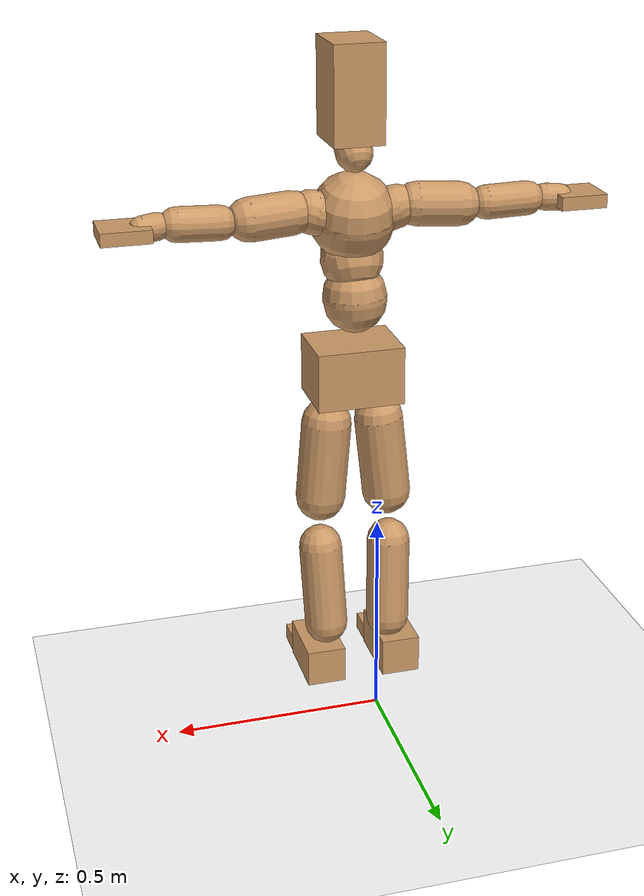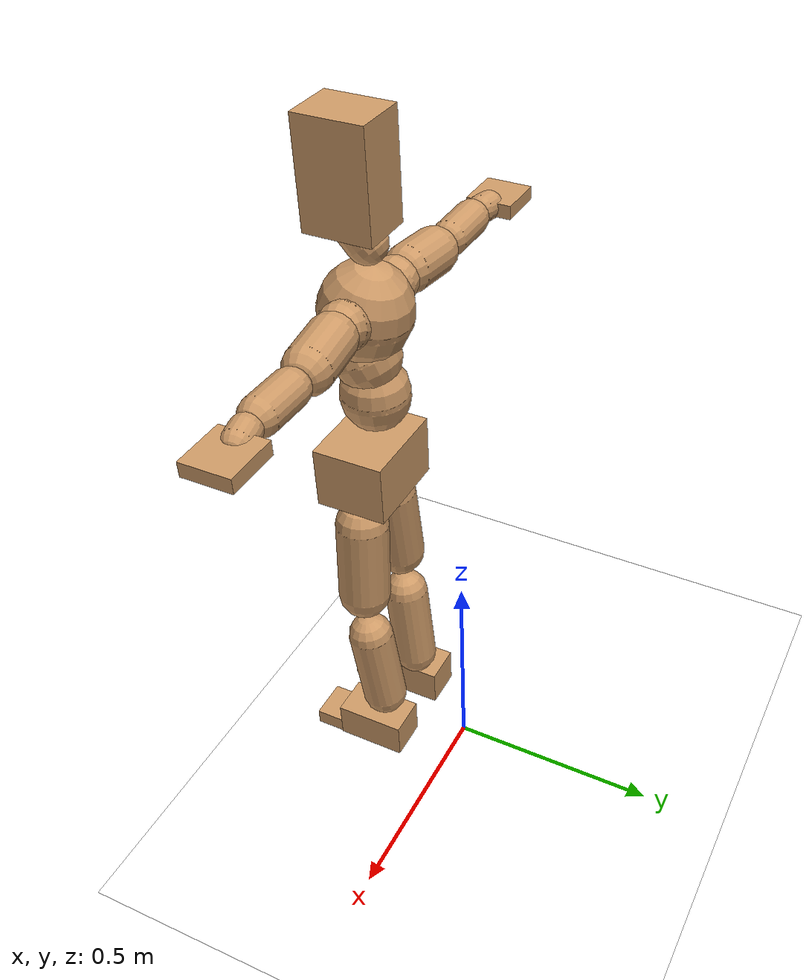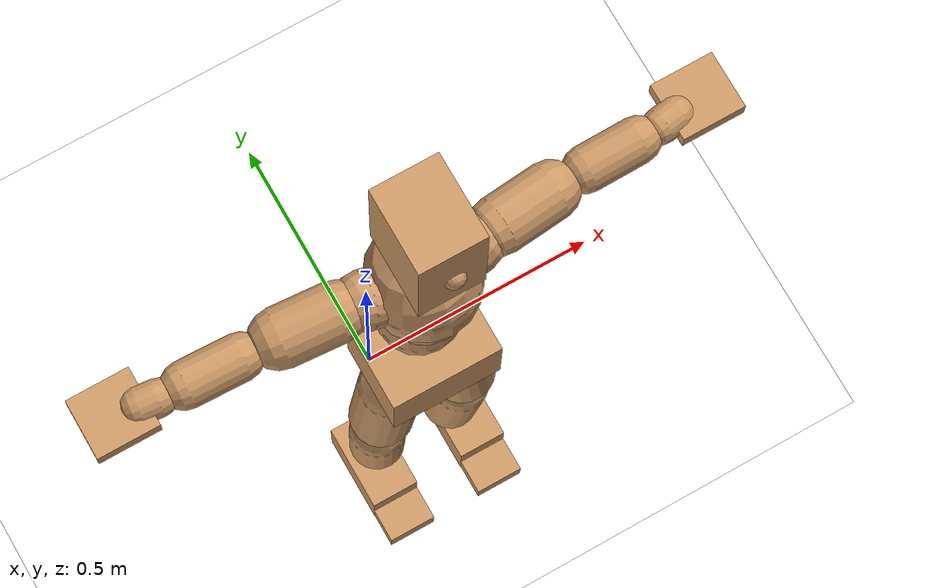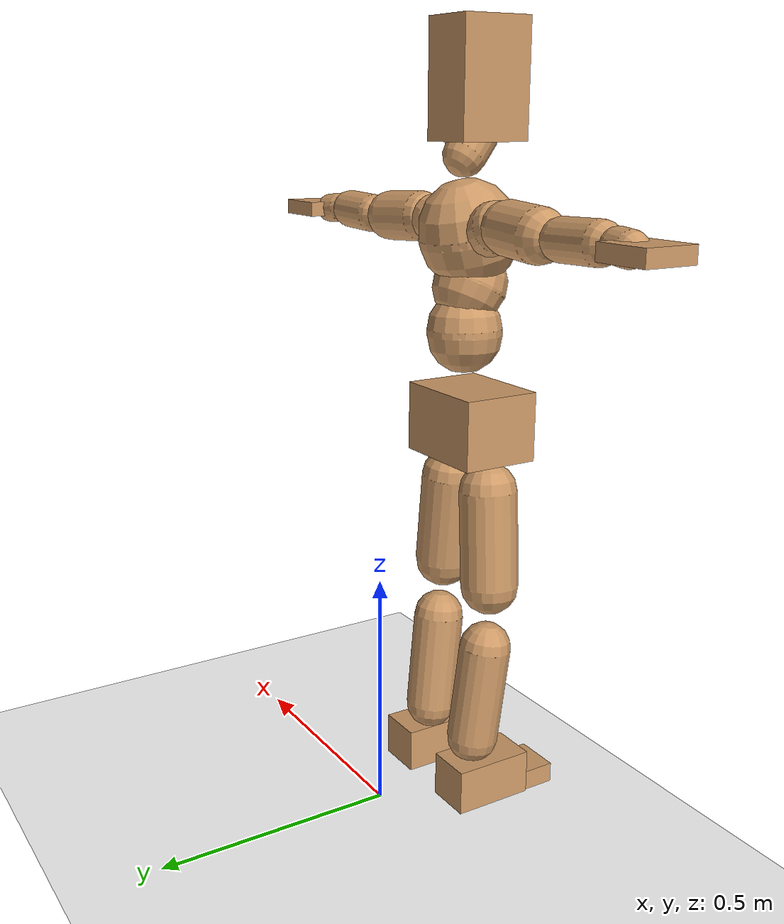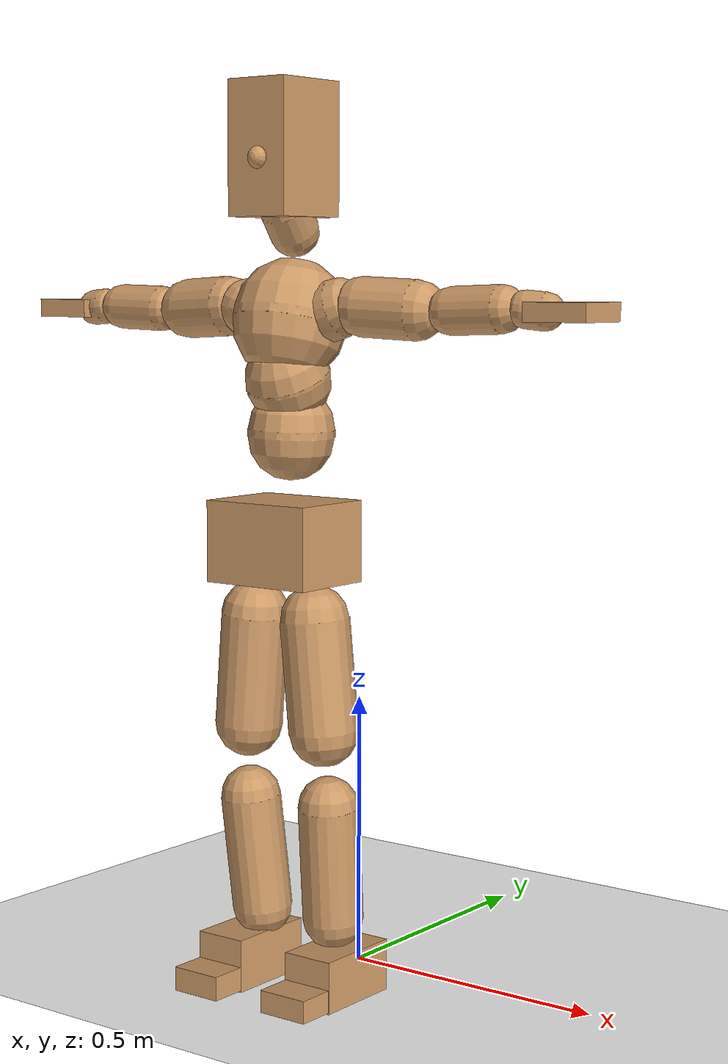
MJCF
<mujoco model="humanoid">
  <option integrator="implicitfast" />

  <visual>
    <global offwidth="1280" offheight="960" />
    <headlight active="1" ambient="0.34 0.34 0.34" diffuse="0.5 0.5 0.5" />
  </visual>

  <default>
    <joint damping="2" stiffness="2" armature="0.01" limited="true" solimplimit="0 .99 .01" />
    <geom condim="1" friction="0.7 0.005 0.0001" solimp=".99 .99 .003" solref="0.015 1" margin="0.001" rgba="0.8 0.6 .4 1" />
    <default class="smplcontact">
      <geom condim="3" friction="1. 0.005 0.0001" solref="0.015 1" solimp="0.98 0.98 0.001" priority="1" />
    </default>
    <default class="stiff_medium">
      <joint stiffness="10" />
    </default>
    <default class="stiff_medium_higher">
      <joint stiffness="50" />
    </default>
    <default class="stiff_high">
      <joint stiffness="100" />
    </default>
  </default>

  <asset>
    <texture type="skybox" builtin="gradient" rgb1="0.99 0.99 0.99" rgb2="0.608 0.828 0.892" width="100" />
    <texture builtin="flat" height="1278" mark="cross" markrgb="1 1 1" name="texgeom" random="0.01" rgb1="0.8 0.6 0.4" rgb2="0.8 0.6 0.4" type="cube" width="127" />
    <texture name="texplane" type="2d" builtin="checker" markrgb="1 1 1" rgb1="0.756 0.772 0.76" rgb2="0.6 0.6 0.6" width="100" height="100" />
    <material name="MatPlane" reflectance="0.5" texture="texplane" texrepeat="1 1" texuniform="true" />
    <material name="geom" texture="texgeom" texuniform="true" />
  </asset>

  <worldbody>
    <light name="tracking_light" pos="0 0 7" dir="0 0 -1" directional="true" cutoff="100" exponent="1" diffuse="1 1 1" specular="0.1 0.1 0.1" mode="trackcom" />
    <camera name="back" pos="0 3 2.4" xyaxes="-1 0 0 0 -1 2" mode="trackcom" />
    <camera name="side" pos="-3 0 2.4" xyaxes="0 -1 0 1 0 2" mode="trackcom" />
    <camera name="front_side" pos="-2.8 -2.8 0.8" xyaxes="0.5 -0.5 0 0.1 0.1 1" mode="trackcom" />
    <geom condim="3" name="floor" pos="0 0 0" rgba="1 1 1 1" size="100 100 .2" type="plane" material="MatPlane" />
    <body name="Pelvis" pos="-0.0018 -0.2233 0.825587" euler="90 0 0">
      <site name="Pelvis" size="0.01" />
      <freejoint name="Pelvis" />
      <geom type="box" pos="-0.0000 -0.0121 -0.0055" size="0.1069 0.0722 0.083" quat="1.0000 0.0000 0.0000 0.0000" density="3165.830099" name="Pelvis" />
      <body name="L_Hip" pos="0.0608125 -0.079975 -0.00595">
        <joint name="L_Hip_x" type="hinge" pos="0 0 0" axis="1 0 0" stiffness="8.018564387755102" range="-160.0 22.92" class="stiff_medium" damping="11.360360262787497" armature="0.007153277434128083"/>
        <joint name="L_Hip_y" type="hinge" pos="0 0 0" axis="0 1 0" stiffness="8.040343265306122" range="-70.0 70.0" class="stiff_medium" damping="8.207855033549663" armature="0.008378856726485993"/>
        <joint name="L_Hip_z" type="hinge" pos="0 0 0" axis="0 0 1" stiffness="8.038478673469386" range="-28.65 90.0" class="stiff_medium" damping="7.581991637464593" armature="0.0071514274685227155"/>
        <geom type="capsule" density="2040.816327" fromto="0.0060375 -0.065625 -0.0007875 0.023975 -0.262675 -0.00315" size="0.0615" name="L_Hip" />
        <body name="L_Knee" pos="0.0300125 -0.3283 -0.0039375">
          <joint name="L_Knee_x" type="hinge" pos="0 0 0" axis="1 0 0" range="-5.16 171.89" damping="6.187481263356625" armature="0.007345812746914759" stiffness="1.6286882448979592"/>
          <joint name="L_Knee_y" type="hinge" pos="0 0 0" axis="0 1 0" range="-4.58 6.88" damping="6.664577128501179" armature="0.008600571968275744" stiffness="1.6138675306122447"/>
          <joint name="L_Knee_z" type="hinge" pos="0 0 0" axis="0 0 1" range="-6.88 4.58" damping="6.195974658750661" armature="0.007336542514311983" stiffness="1.635226244897959"/>
          <geom type="capsule" density="1234.567901" fromto="-0.0023625 -0.06965 -0.0076125 -0.0095375 -0.2786 -0.030625" size="0.0541" name="L_Knee" />
          <body name="L_Ankle" pos="-0.0119 -0.34825 -0.0382375">
            <joint name="L_Ankle_x" type="hinge" pos="0 0 0" axis="1 0 0" range="-45.84 45.84" class="stiff_medium" damping="5.161808139893089" armature="0.008458478225834358" stiffness="8.750018673469388"/>
            <joint name="L_Ankle_y" type="hinge" pos="0 0 0" axis="0 1 0" range="-74.48 22.92" class="stiff_medium" damping="2.5896377165389355" armature="0.008515827848834853" stiffness="8.750011836734695"/>
            <joint name="L_Ankle_z" type="hinge" pos="0 0 0" axis="0 0 1" range="-4.58 4.58" class="stiff_medium" damping="5.292201995620508" armature="0.008891238718237998" stiffness="8.75"/>
            <geom type="box" pos="0.0203875 -0.0209125 0.021175" size="0.0483 0.0464 0.085" quat="1.0000 0.0000 0.0000 0.0000" density="449.071558" name="L_Ankle" class="smplcontact" />
            <body name="L_Toe" pos="0.0231 -0.048825 0.104388">
              <joint name="L_Toe_x" type="hinge" pos="0 0 0" axis="1 0 0" range="-91.67 22.92" armature="0.009108934582590985" damping="1.7855327227208255" stiffness="1.75"/>
              <joint name="L_Toe_y" type="hinge" pos="0 0 0" axis="0 1 0" range="-4.58 4.58" armature="0.009372172477213336" damping="1.811148908020726" stiffness="1.75"/>
              <joint name="L_Toe_z" type="hinge" pos="0 0 0" axis="0 0 1" range="-4.58 4.58" armature="0.009904425331423569" damping="1.8618670376797182" stiffness="1.75"/>
              <geom type="box" pos="-0.002625 0.0048125 0.0217" size="0.0478 0.02 0.0496" quat="1.0000 0.0000 0.0000 0.0000" density="423.206892" name="L_Toe" class="smplcontact" />
            </body>
          </body>
        </body>
      </body>
      <body name="R_Hip" pos="-0.0592375 -0.0791875 -0.0037625">
        <joint name="R_Hip_x" type="hinge" pos="0 0 0" axis="1 0 0" stiffness="8.018564387755102" range="-160.0 22.92" class="stiff_medium" damping="11.360360262787497" armature="0.007153277434128083"/>
        <joint name="R_Hip_y" type="hinge" pos="0 0 0" axis="0 1 0" stiffness="8.040343265306122" range="-70.0 70.0" class="stiff_medium" damping="8.207855033549663" armature="0.008378856726485993"/>
        <joint name="R_Hip_z" type="hinge" pos="0 0 0" axis="0 0 1" stiffness="8.038478673469386" range="-90.0 28.65" class="stiff_medium" damping="7.581991637464593" armature="0.0071514274685227155"/>
        <geom type="capsule" density="2040.816327" fromto="-0.0067375 -0.0669375 -0.001575 -0.026775 -0.267838 -0.0062125" size="0.0606" name="R_Hip" />
        <body name="R_Knee" pos="-0.0335125 -0.334775 -0.0077875">
          <joint name="R_Knee_x" type="hinge" pos="0 0 0" axis="1 0 0" range="-5.16 171.89" damping="6.187481263356625" armature="0.007345812746914759" stiffness="1.6286882448979592"/>
          <joint name="R_Knee_y" type="hinge" pos="0 0 0" axis="0 1 0" range="-6.88 4.58" damping="6.664577128501179" armature="0.008600571968275744" stiffness="1.6138675306122447"/>
          <joint name="R_Knee_z" type="hinge" pos="0 0 0" axis="0 0 1" range="-4.58 6.88" damping="6.195974658750661" armature="0.007336542514311983" stiffness="1.635226244897959"/>
          <geom type="capsule" density="1234.567901" fromto="0.0028 -0.0697375 -0.0074375 0.011025 -0.278863 -0.029575" size="0.0541" name="R_Knee" />
          <body name="R_Ankle" pos="0.013825 -0.3486 -0.0370125">
            <joint name="R_Ankle_x" type="hinge" pos="0 0 0" axis="1 0 0" range="-45.84 45.84" class="stiff_medium" damping="5.161808139893089" armature="0.008458478225834358" stiffness="8.750018673469388"/>
            <joint name="R_Ankle_y" type="hinge" pos="0 0 0" axis="0 1 0" range="-22.92 74.48" class="stiff_medium" damping="2.5896377165389355" armature="0.008515827848834853" stiffness="8.750011836734695"/>
            <joint name="R_Ankle_z" type="hinge" pos="0 0 0" axis="0 0 1" range="-4.58 4.58" class="stiff_medium" damping="5.292201995620508" armature="0.008891238718237998" stiffness="8.75"/>
            <geom type="box" pos="-0.01855 -0.015225 0.0224" size="0.0483 0.0478 0.0865" quat="1.0000 0.0000 0.0000 0.0000" density="434.700981" name="R_Ankle" class="smplcontact" />
            <body name="R_Toe" pos="-0.022225 -0.0420875 0.107888">
              <joint name="R_Toe_x" type="hinge" pos="0 0 0" axis="1 0 0" range="-91.67 22.92" armature="0.009108934582590985" damping="1.7855327227208255" stiffness="1.75"/>
              <joint name="R_Toe_y" type="hinge" pos="0 0 0" axis="0 1 0" range="-4.58 4.58" armature="0.009372172477213336" damping="1.811148908020726" stiffness="1.75"/>
              <joint name="R_Toe_z" type="hinge" pos="0 0 0" axis="0 0 1" range="-4.58 4.58" armature="0.009904425331423569" damping="1.8618670376797182" stiffness="1.75"/>
              <geom type="box" pos="0.003675 0.0039375 0.0198625" size="0.0479 0.0216 0.0493" quat="1.0000 0.0000 0.0000 0.0000" density="407.384095" name="R_Toe" class="smplcontact" />
            </body>
          </body>
        </body>
      </body>
      <body name="Torso" pos="-0.0025 0.109 -0.0267">
        <joint name="Torso_x" type="hinge" pos="0 0 0" axis="1 0 0" range="-25.78 57.3" class="stiff_medium" damping="13.296564125699907" armature="0.008717287887859693" stiffness="9.01394612244898"/>
        <joint name="Torso_y" type="hinge" pos="0 0 0" axis="0 1 0" range="-57.3 57.3" class="stiff_high" damping="11.857975578739207" armature="0.003844721181114158" stiffness="91.43158775510203"/>
        <joint name="Torso_z" type="hinge" pos="0 0 0" axis="0 0 1" range="-34.38 34.38" class="stiff_high" damping="16.193220219297846" armature="0.007045583299802335" stiffness="93.0442413043478"/>
        <geom type="capsule" density="2040.816327" fromto="0.0025 0.0608 0.0005 0.003 0.0743 0.0006" size="0.0769" name="Torso" />
        <body name="Spine" pos="0.0055 0.1352 0.0011">
          <joint name="Spine_x" type="hinge" pos="0 0 0" axis="1 0 0" stiffness="8.855082083333333" range="-25.78 57.3" class="stiff_medium" damping="13.076797677453987" armature="0.008582774445870408"/>
          <joint name="Spine_y" type="hinge" pos="0 0 0" axis="0 1 0" stiffness="8.966550425531915" range="-57.3 57.3" class="stiff_high" damping="4.670538649446807" armature="0.003801268715520682"/>
          <joint name="Spine_z" type="hinge" pos="0 0 0" axis="0 0 1" stiffness="17.399179999999998" range="-34.38 34.38" class="stiff_high" damping="8.61238928809505" armature="0.005920876830729187"/>
          <geom type="capsule" density="2040.816327" fromto="0.0007 0.0238 0.0114 0.0008 0.0291 0.014" size="0.0755" name="Spine" />
          <body name="Chest" pos="0.0015 0.0529 0.0254">
            <joint name="Chest_x" type="hinge" pos="0 0 0" axis="1 0 0" stiffness="8.445605217391304" range="-25.78 57.3" class="stiff_medium" damping="12.725283601188005" armature="0.00852160981625542"/>
            <joint name="Chest_y" type="hinge" pos="0 0 0" axis="0 1 0" stiffness="7.416513142857141" range="-57.3 57.3" class="stiff_high" damping="4.235867490218071" armature="0.0037801147775485626"/>
            <joint name="Chest_z" type="hinge" pos="0 0 0" axis="0 0 1" stiffness="17.461715111111108" range="-34.38 34.38" class="stiff_high" damping="8.265316118618486" armature="0.005433748608980234"/>
            <geom type="capsule" density="2040.816327" fromto="-0.0009 0.0682 -0.0173 -0.001 0.0833 -0.0212" size="0.1002" name="Chest" />
            <body name="Neck" pos="-0.0028 0.2139 -0.0429">
              <joint name="Neck_x" type="hinge" pos="0 0 0" axis="1 0 0" range="-28.65 57.3" class="stiff_medium_higher" damping="10.0" armature="0.01" stiffness="50.0"/>
              <joint name="Neck_y" type="hinge" pos="0 0 0" axis="0 1 0" range="-40.11 40.11" class="stiff_medium_higher" damping="10.0" armature="0.010000000000000002" stiffness="50.0"/>
              <joint name="Neck_z" type="hinge" pos="0 0 0" axis="0 0 1" range="-40.11 40.11" class="stiff_medium_higher" damping="9.999999999999993" armature="0.009999999999999985" stiffness="50.0"/>
              <geom type="capsule" density="1000" fromto="0.001 0.013 0.0103 0.0041 0.052 0.0411" size="0.0436" name="Neck" />
              <body name="Head" pos="0.0052 0.065 0.0513">
                <joint name="Head_x" type="hinge" pos="0 0 0" axis="1 0 0" range="-28.65 57.3" class="stiff_medium_higher" damping="2.000000000000006" armature="0.010000000000000064" stiffness="50.0"/>
                <joint name="Head_y" type="hinge" pos="0 0 0" axis="0 1 0" range="-40.11 40.11" class="stiff_medium_higher" damping="2.0" armature="0.01" stiffness="50.0"/>
                <joint name="Head_z" type="hinge" pos="0 0 0" axis="0 0 1" range="-40.11 40.11" class="stiff_medium_higher" damping="2.000000000000003" armature="0.010000000000000033" stiffness="50.0"/>
                <geom type="box" pos="-0.0042 0.0876 -0.0116" size="0.0606 0.1154 0.076" quat="1.0000 0.0000 0.0000 0.0000" density="1018.069894" name="Head" />
                <geom type="capsule" name="nose" size="0.02 0.01" pos="0 0.07 0.05" quat="1 0 0 0" mass="0" contype="0" conaffinity="0" />
              </body>
            </body>
            <body name="L_Thorax" pos="0.052205 0.0806262 -0.0225912">
              <joint name="L_Thorax_x" type="hinge" pos="0 0 0" axis="1 0 0" range="-10.89 4.58" class="stiff_medium_higher" damping="10.752161019344653" armature="0.00549253449124397" stiffness="26.310478061224497"/>
              <joint name="L_Thorax_y" type="hinge" pos="0 0 0" axis="0 1 0" range="-28.65 17.19" class="stiff_medium_higher" damping="8.656507675839675" armature="0.0035990909186137975" stiffness="26.025712755102038"/>
              <joint name="L_Thorax_z" type="hinge" pos="0 0 0" axis="0 0 1" range="-31.51 40.11" class="stiff_medium_higher" damping="8.654936190408641" armature="0.0035973494554525534" stiffness="26.02885867346939"/>
              <geom type="capsule" density="1000" fromto="0.0120575 0.00404125 -0.0011925 0.04823 0.016165 -0.00470375" size="0.0521" name="L_Thorax" />
              <body name="L_Shoulder" pos="0.0602875 0.0202062 -0.00589625">
                <joint name="L_Shoulder_x" type="hinge" pos="0 0 0" axis="1 0 0" range="-97.4 97.4" class="stiff_medium" damping="3.4355706113714444" armature="0.006181474178058753" stiffness="5.3039961224489796"/>
                <joint name="L_Shoulder_y" type="hinge" pos="0 0 0" axis="0 1 0" range="-108.86 80.21" class="stiff_medium" damping="2.619467278569037" armature="0.00364693025105719" stiffness="5.226319999999999"/>
                <joint name="L_Shoulder_z" type="hinge" pos="0 0 0" axis="0 0 1" range="-97.4 85.94" class="stiff_medium" damping="2.619734916927621" armature="0.0036444798930498398" stiffness="5.230902653061225"/>
                <geom type="capsule" density="1000" fromto="0.0343837 -0.0017225 -0.00364375 0.137601 -0.0067575 -0.014575" size="0.0517" name="L_Shoulder" />
                <body name="L_Elbow" pos="0.171985 -0.00848 -0.0182187">
                  <joint name="L_Elbow_x" type="hinge" pos="0 0 0" axis="1 0 0" range="-17.19 4.58" damping="3.1785577743547244" armature="0.007393662378868919" stiffness="1.0931772653061227"/>
                  <joint name="L_Elbow_y" type="hinge" pos="0 0 0" axis="0 1 0" range="-180.0 17.19" damping="2.303303060735329" armature="0.0038850422609153757" stiffness="1.0924370204081633"/>
                  <joint name="L_Elbow_z" type="hinge" pos="0 0 0" axis="0 0 1" range="-100.84 4.58" damping="2.300811432859375" armature="0.0038721783452337257" stiffness="1.0936961632653062"/>
                  <geom type="capsule" density="1000" fromto="0.0329925 0.0011925 -0.0001325 0.132102 0.00477 -0.00059625" size="0.0405" name="L_Elbow" />
                  <body name="L_Wrist" pos="0.165095 0.0059625 -0.000795">
                    <joint name="L_Wrist_x" type="hinge" pos="0 0 0" axis="1 0 0" range="-180.0 22.92" armature="0.008001427855743315" damping="1.410962269656013" stiffness="1.2440370408163264"/>
                    <joint name="L_Wrist_y" type="hinge" pos="0 0 0" axis="0 1 0" range="-17.19 17.19" armature="0.004879471429003447" damping="1.0965644446974496" stiffness="1.2321555714285712"/>
                    <joint name="L_Wrist_z" type="hinge" pos="0 0 0" axis="0 0 1" range="-22.92 22.92" armature="0.004698864868438898" damping="1.0781698402208948" stiffness="1.2369478979591837"/>
                    <geom type="capsule" density="1000" fromto="0.01113 -0.00106 -0.0019875 0.04452 -0.00430625 -0.00795" size="0.0318" name="L_Wrist" class="smplcontact" />
                    <body name="L_Hand" pos="0.05565 -0.0054325 -0.00987125">
                      <joint name="L_Hand_x" type="hinge" pos="0 0 0" axis="1 0 0" range="-17.19 17.19" armature="0.009755552996203905" damping="1.6078618449167783" stiffness="1.3249990612244895"/>
                      <joint name="L_Hand_y" type="hinge" pos="0 0 0" axis="0 1 0" range="-51.57 51.57" armature="0.007043747166286113" damping="1.3662326477640487" stiffness="1.3249990408163264"/>
                      <joint name="L_Hand_z" type="hinge" pos="0 0 0" axis="0 0 1" range="-91.67 91.67" armature="0.0063208783295228945" damping="1.2942300773617885" stiffness="1.3249989999999998"/>
                      <geom type="box" pos="0.0326612 0.0006625 -0.0038425" size="0.0585 0.0158 0.0538" quat="1.0000 0.0000 0.0000 0.0000" density="400.552564" name="L_Hand" class="smplcontact" />
                    </body>
                  </body>
                </body>
              </body>
            </body>
            <body name="R_Thorax" pos="-0.0541925 0.078705 -0.0255725">
              <joint name="R_Thorax_x" type="hinge" pos="0 0 0" axis="1 0 0" range="-10.89 4.58" class="stiff_medium_higher" damping="10.752161019344653" armature="0.00549253449124397" stiffness="26.310478061224497"/>
              <joint name="R_Thorax_y" type="hinge" pos="0 0 0" axis="0 1 0" range="-17.19 28.65" class="stiff_medium_higher" damping="8.656507675839675" armature="0.0035990909186137975" stiffness="26.025712755102038"/>
              <joint name="R_Thorax_z" type="hinge" pos="0 0 0" axis="0 0 1" range="-40.11 31.51" class="stiff_medium_higher" damping="8.654936190408641" armature="0.0035973494554525534" stiffness="26.02885867346939"/>
              <geom type="capsule" density="1000" fromto="-0.01272 0.00430625 -0.0011925 -0.05088 0.017225 -0.00483625" size="0.0511" name="R_Thorax" />
              <body name="R_Shoulder" pos="-0.0636 0.0215975 -0.00602875">
                <joint name="R_Shoulder_x" type="hinge" pos="0 0 0" axis="1 0 0" range="-97.4 97.4" class="stiff_medium" damping="3.4355706113714444" armature="0.006181474178058753" stiffness="5.3039961224489796"/>
                <joint name="R_Shoulder_y" type="hinge" pos="0 0 0" axis="0 1 0" range="-80.21 108.86" class="stiff_medium" damping="2.619467278569037" armature="0.00364693025105719" stiffness="5.226319999999999"/>
                <joint name="R_Shoulder_z" type="hinge" pos="0 0 0" axis="0 0 1" range="-85.94 97.4" class="stiff_medium" damping="2.619734916927621" armature="0.0036444798930498398" stiffness="5.230902653061225"/>
                <geom type="capsule" density="1000" fromto="-0.0335888 -0.00178875 -0.00284875 -0.134488 -0.00708875 -0.0113288" size="0.0531" name="R_Shoulder" />
                <body name="R_Elbow" pos="-0.168076 -0.00881125 -0.0141775">
                  <joint name="R_Elbow_x" type="hinge" pos="0 0 0" axis="1 0 0" range="-17.19 4.58" damping="3.1785577743547244" armature="0.007393662378868919" stiffness="1.0931772653061227"/>
                  <joint name="R_Elbow_y" type="hinge" pos="0 0 0" axis="0 1 0" range="-17.19 180.0" damping="2.303303060735329" armature="0.0038850422609153757" stiffness="1.0924370204081633"/>
                  <joint name="R_Elbow_z" type="hinge" pos="0 0 0" axis="0 0 1" range="-4.58 100.84" damping="2.300811432859375" armature="0.0038721783452337257" stiffness="1.0936961632653062"/>
                  <geom type="capsule" density="1000" fromto="-0.0338538 0.00106 -0.00072875 -0.135282 0.0041075 -0.002915" size="0.0408" name="R_Elbow" />
                  <body name="R_Wrist" pos="-0.169136 0.0051675 -0.00371">
                    <joint name="R_Wrist_x" type="hinge" pos="0 0 0" axis="1 0 0" range="-180.0 22.92" armature="0.008001427855743315" damping="1.410962269656013" stiffness="1.2440370408163264"/>
                    <joint name="R_Wrist_y" type="hinge" pos="0 0 0" axis="0 1 0" range="-17.19 17.19" armature="0.004879471429003447" damping="1.0965644446974496" stiffness="1.2321555714285712"/>
                    <joint name="R_Wrist_z" type="hinge" pos="0 0 0" axis="0 0 1" range="-22.92 22.92" armature="0.004698864868438898" damping="1.0781698402208948" stiffness="1.2369478979591837"/>
                    <geom type="capsule" density="1000" fromto="-0.0111962 -0.000795 -0.00139125 -0.0448512 -0.00324625 -0.00549875" size="0.0326" name="R_Wrist" class="smplcontact" />
                    <body name="R_Hand" pos="-0.0560475 -0.00404125 -0.00682375">
                      <joint name="R_Hand_x" type="hinge" pos="0 0 0" axis="1 0 0" range="-17.19 17.19" armature="0.009755552996203905" damping="1.6078618449167783" stiffness="1.3249990612244895"/>
                      <joint name="R_Hand_y" type="hinge" pos="0 0 0" axis="0 1 0" range="-51.57 51.57" armature="0.007043747166286113" damping="1.3662326477640487" stiffness="1.3249990408163264"/>
                      <joint name="R_Hand_z" type="hinge" pos="0 0 0" axis="0 0 1" range="-91.67 91.67" armature="0.0063208783295228945" damping="1.2942300773617885" stiffness="1.3249989999999998"/>
                      <geom type="box" pos="-0.0306075 -0.00059625 -0.00523375" size="0.0569 0.0164 0.0546" quat="1.0000 0.0000 0.0000 0.0000" density="403.679611" name="R_Hand" class="smplcontact" />
                    </body>
                  </body>
                </body>
              </body>
            </body>
          </body>
        </body>
      </body>
    </body>
  </worldbody>
  <actuator>
    <general name="L_Hip_x" joint="L_Hip_x" biastype="affine" gainprm="230.3974619502181" biasprm="-172.65954561631258 -144.33415897959185 -1.5147147017049996" ctrllimited="true" ctrlrange="-1 1" forcerange="-288.6683179591837 288.6683179591837" />
    <general name="L_Hip_y" joint="L_Hip_y" biastype="affine" gainprm="176.8163833423812" biasprm="0.0 -144.7261787755102 -1.6415710067099327" ctrllimited="true" ctrlrange="-1 1" forcerange="-289.4523575510204 289.4523575510204" />
    <general name="L_Hip_z" joint="L_Hip_z" biastype="affine" gainprm="149.81713355526176" biasprm="77.4654963642251 -144.69261612244895 -1.5163983274929185" ctrllimited="true" ctrlrange="-1 1" forcerange="-289.3852322448979 289.3852322448979" />
    <general name="L_Knee_x" joint="L_Knee_x" biastype="affine" gainprm="226.4768283011216" biasprm="213.27580673621011 -146.58194204081633 -1.5468703158391564" ctrllimited="true" ctrlrange="-1 1" forcerange="-293.16388408163266 293.16388408163266" />
    <general name="L_Knee_y" joint="L_Knee_y" biastype="affine" gainprm="14.525877693080384" biasprm="2.915315767372154 -145.24807775510203 -1.6661442821252948" ctrllimited="true" ctrlrange="-1 1" forcerange="-290.49615551020406 290.49615551020406" />
    <general name="L_Knee_z" joint="L_Knee_z" biastype="affine" gainprm="14.718120281465588" biasprm="-2.953898485808975 -147.17036204081631 -1.5489936646876652" ctrllimited="true" ctrlrange="-1 1" forcerange="-294.34072408163263 294.34072408163263" />
    <general name="L_Ankle_x" joint="L_Ankle_x" biastype="affine" gainprm="63.0047751266266" biasprm="0.0 -78.75016806122449 -1.7206027132976962" ctrllimited="true" ctrlrange="-1 1" forcerange="-157.50033612244897 157.50033612244897" />
    <general name="L_Ankle_y" joint="L_Ankle_y" biastype="affine" gainprm="66.93564902394152" biasprm="-35.43328607468609 -78.75010653061226 -1.7264251443592904" ctrllimited="true" ctrlrange="-1 1" forcerange="-157.5002130612245 157.5002130612245" />
    <general name="L_Ankle_z" joint="L_Ankle_z" biastype="affine" gainprm="6.294966279630548" biasprm="0.0 -78.75 -1.7640673318735027" ctrllimited="true" ctrlrange="-1 1" forcerange="-157.5 157.5" />
    <general name="L_Toe_x" joint="L_Toe_x" biastype="affine" gainprm="62.999142880599514" biasprm="-37.797286613502195 -63.0 -0.7142130890883303" ctrllimited="true" ctrlrange="-1 1" forcerange="-126.0 126.0" />
    <general name="L_Toe_y" joint="L_Toe_y" biastype="affine" gainprm="5.035973023704439" biasprm="0.0 -63.0 -0.7244595632082904" ctrllimited="true" ctrlrange="-1 1" forcerange="-126.0 126.0" />
    <general name="L_Toe_z" joint="L_Toe_z" biastype="affine" gainprm="5.035973023704439" biasprm="0.0 -63.0 -0.7447468150718873" ctrllimited="true" ctrlrange="-1 1" forcerange="-126.0 126.0" />
    <general name="R_Hip_x" joint="R_Hip_x" biastype="affine" gainprm="230.3974619502181" biasprm="-172.65954561631258 -144.33415897959185 -1.5147147017049996" ctrllimited="true" ctrlrange="-1 1" forcerange="-288.6683179591837 288.6683179591837" />
    <general name="R_Hip_y" joint="R_Hip_y" biastype="affine" gainprm="176.8163833423812" biasprm="0.0 -144.7261787755102 -1.6415710067099327" ctrllimited="true" ctrlrange="-1 1" forcerange="-289.4523575510204 289.4523575510204" />
    <general name="R_Hip_z" joint="R_Hip_z" biastype="affine" gainprm="149.81713355526176" biasprm="-77.4654963642251 -144.69261612244895 -1.5163983274929185" ctrllimited="true" ctrlrange="-1 1" forcerange="-289.3852322448979 289.3852322448979" />
    <general name="R_Knee_x" joint="R_Knee_x" biastype="affine" gainprm="226.4768283011216" biasprm="213.27580673621011 -146.58194204081633 -1.5468703158391564" ctrllimited="true" ctrlrange="-1 1" forcerange="-293.16388408163266 293.16388408163266" />
    <general name="R_Knee_y" joint="R_Knee_y" biastype="affine" gainprm="14.525877693080384" biasprm="-2.915315767372154 -145.24807775510203 -1.6661442821252948" ctrllimited="true" ctrlrange="-1 1" forcerange="-290.49615551020406 290.49615551020406" />
    <general name="R_Knee_z" joint="R_Knee_z" biastype="affine" gainprm="14.718120281465588" biasprm="2.953898485808975 -147.17036204081631 -1.5489936646876652" ctrllimited="true" ctrlrange="-1 1" forcerange="-294.34072408163263 294.34072408163263" />
    <general name="R_Ankle_x" joint="R_Ankle_x" biastype="affine" gainprm="63.0047751266266" biasprm="0.0 -78.75016806122449 -1.7206027132976962" ctrllimited="true" ctrlrange="-1 1" forcerange="-157.50033612244897 157.50033612244897" />
    <general name="R_Ankle_y" joint="R_Ankle_y" biastype="affine" gainprm="66.93564902394152" biasprm="35.43328607468609 -78.75010653061226 -1.7264251443592904" ctrllimited="true" ctrlrange="-1 1" forcerange="-157.5002130612245 157.5002130612245" />
    <general name="R_Ankle_z" joint="R_Ankle_z" biastype="affine" gainprm="6.294966279630548" biasprm="0.0 -78.75 -1.7640673318735027" ctrllimited="true" ctrlrange="-1 1" forcerange="-157.5 157.5" />
    <general name="R_Toe_x" joint="R_Toe_x" biastype="affine" gainprm="62.999142880599514" biasprm="-37.797286613502195 -63.0 -0.7142130890883303" ctrllimited="true" ctrlrange="-1 1" forcerange="-126.0 126.0" />
    <general name="R_Toe_y" joint="R_Toe_y" biastype="affine" gainprm="5.035973023704439" biasprm="0.0 -63.0 -0.7244595632082904" ctrllimited="true" ctrlrange="-1 1" forcerange="-126.0 126.0" />
    <general name="R_Toe_z" joint="R_Toe_z" biastype="affine" gainprm="5.035973023704439" biasprm="0.0 -63.0 -0.7447468150718873" ctrllimited="true" ctrlrange="-1 1" forcerange="-126.0 126.0" />
    <general name="Torso_x" joint="Torso_x" biastype="affine" gainprm="156.84477639727098" biasprm="59.505866057318 -216.33470693877553 -3.5457504335199754" ctrllimited="true" ctrlrange="-1 1" forcerange="-324.5020604081633 324.5020604081633" />
    <general name="Torso_y" joint="Torso_y" biastype="affine" gainprm="219.45197455967397" biasprm="0.0 -219.43581061224486 -2.3715951157478417" ctrllimited="true" ctrlrange="-1 1" forcerange="-329.1537159183673 329.1537159183673" />
    <general name="Torso_z" joint="Torso_z" biastype="affine" gainprm="133.99357690475964" biasprm="0.0 -223.30617913043474 -3.238644043859569" ctrllimited="true" ctrlrange="-1 1" forcerange="-334.9592686956521 334.9592686956521" />
    <general name="Spine_x" joint="Spine_x" biastype="affine" gainprm="154.08050486134445" biasprm="58.457119802955894 -212.52197 -3.487146047321063" ctrllimited="true" ctrlrange="-1 1" forcerange="-318.782955 318.782955" />
    <general name="Spine_y" joint="Spine_y" biastype="affine" gainprm="215.21306193898633" biasprm="0.0 -215.19721021276595 -2.3352693247234035" ctrllimited="true" ctrlrange="-1 1" forcerange="-322.7958153191489 322.7958153191489" />
    <general name="Spine_z" joint="Spine_z" biastype="affine" gainprm="125.28332386438697" biasprm="0.0 -208.79016 -2.8707964293650168" ctrllimited="true" ctrlrange="-1 1" forcerange="-313.18523999999996 313.18523999999996" />
    <general name="Chest_x" joint="Chest_x" biastype="affine" gainprm="146.95551136725376" biasprm="55.753944611168 -202.69452521739132 -3.3934089603168016" ctrllimited="true" ctrlrange="-1 1" forcerange="-304.04178782608693 304.04178782608693" />
    <general name="Chest_y" joint="Chest_y" biastype="affine" gainprm="178.00942688507038" biasprm="0.0 -177.9963154285714 -2.1179337451090356" ctrllimited="true" ctrlrange="-1 1" forcerange="-266.9944731428571 266.9944731428571" />
    <general name="Chest_z" joint="Chest_z" biastype="affine" gainprm="125.7336098306353" biasprm="0.0 -209.5405813333333 -2.755105372872829" ctrllimited="true" ctrlrange="-1 1" forcerange="-314.31087199999996 314.31087199999996" />
    <general name="Neck_x" joint="Neck_x" biastype="affine" gainprm="27.00198885760427" biasprm="9.000662952534757 -36.0 -0.8" ctrllimited="true" ctrlrange="-1 1" forcerange="-72.0 72.0" />
    <general name="Neck_y" joint="Neck_y" biastype="affine" gainprm="25.20185626709732" biasprm="0.0 -36.0 -0.8" ctrllimited="true" ctrlrange="-1 1" forcerange="-72.0 72.0" />
    <general name="Neck_z" joint="Neck_z" biastype="affine" gainprm="25.20185626709732" biasprm="0.0 -36.0 -0.7999999999999994" ctrllimited="true" ctrlrange="-1 1" forcerange="-72.0 72.0" />
    <general name="Head_x" joint="Head_x" biastype="affine" gainprm="18.001325905069514" biasprm="6.000441968356505 -24.0 -0.8000000000000025" ctrllimited="true" ctrlrange="-1 1" forcerange="-48.0 48.0" />
    <general name="Head_y" joint="Head_y" biastype="affine" gainprm="16.801237511398213" biasprm="0.0 -24.0 -0.8" ctrllimited="true" ctrlrange="-1 1" forcerange="-48.0 48.0" />
    <general name="Head_z" joint="Head_z" biastype="affine" gainprm="16.801237511398213" biasprm="0.0 -24.0 -0.8000000000000013" ctrllimited="true" ctrlrange="-1 1" forcerange="-48.0 48.0" />
    <general name="L_Thorax_x" joint="L_Thorax_x" biastype="affine" gainprm="8.524671780005175" biasprm="-3.4770962464015946 -63.14514734693879 -0.8601728815475722" ctrllimited="true" ctrlrange="-1 1" forcerange="-126.29029469387758 126.29029469387758" />
    <general name="L_Thorax_y" joint="L_Thorax_y" biastype="affine" gainprm="24.98652465153687" biasprm="-6.246631162884218 -62.461710612244886 -0.692520614067174" ctrllimited="true" ctrlrange="-1 1" forcerange="-124.92342122448977 124.92342122448977" />
    <general name="L_Thorax_z" joint="L_Thorax_z" biastype="affine" gainprm="39.04343825747016" biasprm="4.688265414887508 -62.46926081632654 -0.6923948952326914" ctrllimited="true" ctrlrange="-1 1" forcerange="-124.93852163265308 124.93852163265308" />
    <general name="L_Shoulder_x" joint="L_Shoulder_x" biastype="affine" gainprm="43.279353003673734" biasprm="0.0 -25.459181387755102 -0.9161521630323852" ctrllimited="true" ctrlrange="-1 1" forcerange="-50.918362775510204 50.918362775510204" />
    <general name="L_Shoulder_y" joint="L_Shoulder_y" biastype="affine" gainprm="41.39112503423586" biasprm="-6.272045973612193 -25.086336 -0.6985246076184098" ctrllimited="true" ctrlrange="-1 1" forcerange="-50.172672 50.172672" />
    <general name="L_Shoulder_z" joint="L_Shoulder_z" biastype="affine" gainprm="40.171909368365355" biasprm="-2.511018224945282 -25.108332734693878 -0.6985959778473657" ctrllimited="true" ctrlrange="-1 1" forcerange="-50.216665469387756 50.216665469387756" />
    <general name="L_Elbow_x" joint="L_Elbow_x" biastype="affine" gainprm="7.476509558353197" biasprm="-4.330674576519699 -39.35438155102042 -0.508569243896756" ctrllimited="true" ctrlrange="-1 1" forcerange="-78.70876310204083 78.70876310204083" />
    <general name="L_Elbow_y" joint="L_Elbow_y" biastype="affine" gainprm="67.67545257136767" biasprm="-55.87626367028943 -39.327732734693875 -0.3685284897176526" ctrllimited="true" ctrlrange="-1 1" forcerange="-78.65546546938775 78.65546546938775" />
    <general name="L_Elbow_z" joint="L_Elbow_z" biastype="affine" gainprm="36.22176204255759" biasprm="-33.07443382865295 -39.373061877551024 -0.3681298292575" ctrllimited="true" ctrlrange="-1 1" forcerange="-78.74612375510205 78.74612375510205" />
    <general name="L_Wrist_x" joint="L_Wrist_x" biastype="affine" gainprm="13.217727298647333" biasprm="-10.231818470685607 -7.464222244897958 -0.5643849078624051" ctrllimited="true" ctrlrange="-1 1" forcerange="-14.928444489795917 14.928444489795917" />
    <general name="L_Wrist_y" joint="L_Wrist_y" biastype="affine" gainprm="2.2180434007032876" biasprm="0.0 -7.392933428571427 -0.4386257778789799" ctrllimited="true" ctrlrange="-1 1" forcerange="-14.785866857142855 14.785866857142855" />
    <general name="L_Wrist_z" joint="L_Wrist_z" biastype="affine" gainprm="2.9688936318338586" biasprm="0.0 -7.421687387755102 -0.43126793608835795" ctrllimited="true" ctrlrange="-1 1" forcerange="-14.843374775510204 14.843374775510204" />
    <general name="L_Hand_x" joint="L_Hand_x" biastype="affine" gainprm="2.38517399250132" biasprm="0.0 -7.949994367346937 -0.6431447379667113" ctrllimited="true" ctrlrange="-1 1" forcerange="-15.899988734693874 15.899988734693874" />
    <general name="L_Hand_y" joint="L_Hand_y" biastype="affine" gainprm="7.155521867291758" biasprm="0.0 -7.949994244897958 -0.5464930591056195" ctrllimited="true" ctrlrange="-1 1" forcerange="-15.899988489795916 15.899988489795916" />
    <general name="L_Hand_z" joint="L_Hand_z" biastype="affine" gainprm="12.7195398365005" biasprm="0.0 -7.9499939999999985 -0.5176920309447154" ctrllimited="true" ctrlrange="-1 1" forcerange="-15.899987999999997 15.899987999999997" />
    <general name="R_Thorax_x" joint="R_Thorax_x" biastype="affine" gainprm="8.524671780005175" biasprm="-3.4770962464015946 -63.14514734693879 -0.8601728815475722" ctrllimited="true" ctrlrange="-1 1" forcerange="-126.29029469387758 126.29029469387758" />
    <general name="R_Thorax_y" joint="R_Thorax_y" biastype="affine" gainprm="24.98652465153687" biasprm="6.246631162884214 -62.461710612244886 -0.692520614067174" ctrllimited="true" ctrlrange="-1 1" forcerange="-124.92342122448977 124.92342122448977" />
    <general name="R_Thorax_z" joint="R_Thorax_z" biastype="affine" gainprm="39.04343825747016" biasprm="-4.688265414887508 -62.46926081632654 -0.6923948952326914" ctrllimited="true" ctrlrange="-1 1" forcerange="-124.93852163265308 124.93852163265308" />
    <general name="R_Shoulder_x" joint="R_Shoulder_x" biastype="affine" gainprm="43.279353003673734" biasprm="0.0 -25.459181387755102 -0.9161521630323852" ctrllimited="true" ctrlrange="-1 1" forcerange="-50.918362775510204 50.918362775510204" />
    <general name="R_Shoulder_y" joint="R_Shoulder_y" biastype="affine" gainprm="41.39112503423586" biasprm="6.272045973612193 -25.086336 -0.6985246076184098" ctrllimited="true" ctrlrange="-1 1" forcerange="-50.172672 50.172672" />
    <general name="R_Shoulder_z" joint="R_Shoulder_z" biastype="affine" gainprm="40.171909368365355" biasprm="2.5110182249452766 -25.108332734693878 -0.6985959778473657" ctrllimited="true" ctrlrange="-1 1" forcerange="-50.216665469387756 50.216665469387756" />
    <general name="R_Elbow_x" joint="R_Elbow_x" biastype="affine" gainprm="7.476509558353197" biasprm="-4.330674576519699 -39.35438155102042 -0.508569243896756" ctrllimited="true" ctrlrange="-1 1" forcerange="-78.70876310204083 78.70876310204083" />
    <general name="R_Elbow_y" joint="R_Elbow_y" biastype="affine" gainprm="67.67545257136767" biasprm="55.87626367028943 -39.327732734693875 -0.3685284897176526" ctrllimited="true" ctrlrange="-1 1" forcerange="-78.65546546938775 78.65546546938775" />
    <general name="R_Elbow_z" joint="R_Elbow_z" biastype="affine" gainprm="36.22176204255759" biasprm="33.07443382865295 -39.373061877551024 -0.3681298292575" ctrllimited="true" ctrlrange="-1 1" forcerange="-78.74612375510205 78.74612375510205" />
    <general name="R_Wrist_x" joint="R_Wrist_x" biastype="affine" gainprm="13.217727298647333" biasprm="-10.231818470685607 -7.464222244897958 -0.5643849078624051" ctrllimited="true" ctrlrange="-1 1" forcerange="-14.928444489795917 14.928444489795917" />
    <general name="R_Wrist_y" joint="R_Wrist_y" biastype="affine" gainprm="2.2180434007032876" biasprm="0.0 -7.392933428571427 -0.4386257778789799" ctrllimited="true" ctrlrange="-1 1" forcerange="-14.785866857142855 14.785866857142855" />
    <general name="R_Wrist_z" joint="R_Wrist_z" biastype="affine" gainprm="2.9688936318338586" biasprm="0.0 -7.421687387755102 -0.43126793608835795" ctrllimited="true" ctrlrange="-1 1" forcerange="-14.843374775510204 14.843374775510204" />
    <general name="R_Hand_x" joint="R_Hand_x" biastype="affine" gainprm="2.38517399250132" biasprm="0.0 -7.949994367346937 -0.6431447379667113" ctrllimited="true" ctrlrange="-1 1" forcerange="-15.899988734693874 15.899988734693874" />
    <general name="R_Hand_y" joint="R_Hand_y" biastype="affine" gainprm="7.155521867291758" biasprm="0.0 -7.949994244897958 -0.5464930591056195" ctrllimited="true" ctrlrange="-1 1" forcerange="-15.899988489795916 15.899988489795916" />
    <general name="R_Hand_z" joint="R_Hand_z" biastype="affine" gainprm="12.7195398365005" biasprm="0.0 -7.9499939999999985 -0.5176920309447154" ctrllimited="true" ctrlrange="-1 1" forcerange="-15.899987999999997 15.899987999999997" />
  </actuator>
  <contact>
    <exclude body1="Torso" body2="Chest" />
    <exclude body1="Head" body2="Chest" />
    <exclude body1="R_Knee" body2="R_Toe" />
    <exclude body1="R_Knee" body2="L_Ankle" />
    <exclude body1="R_Knee" body2="L_Toe" />
    <exclude body1="L_Knee" body2="L_Toe" />
    <exclude body1="L_Knee" body2="R_Ankle" />
    <exclude body1="L_Knee" body2="R_Toe" />
    <exclude body1="L_Shoulder" body2="Chest" />
    <exclude body1="R_Shoulder" body2="Chest" />
  </contact>
  <sensor>
    <framelinvel name="sensor_Pelvis_framelinvel" objtype="xbody" objname="Pelvis" />
    <framelinvel name="sensor_L_Hip_framelinvel" objtype="xbody" objname="L_Hip" />
    <framelinvel name="sensor_L_Knee_framelinvel" objtype="xbody" objname="L_Knee" />
    <framelinvel name="sensor_L_Ankle_framelinvel" objtype="xbody" objname="L_Ankle" />
    <framelinvel name="sensor_L_Toe_framelinvel" objtype="xbody" objname="L_Toe" />
    <framelinvel name="sensor_R_Hip_framelinvel" objtype="xbody" objname="R_Hip" />
    <framelinvel name="sensor_R_Knee_framelinvel" objtype="xbody" objname="R_Knee" />
    <framelinvel name="sensor_R_Ankle_framelinvel" objtype="xbody" objname="R_Ankle" />
    <framelinvel name="sensor_R_Toe_framelinvel" objtype="xbody" objname="R_Toe" />
    <framelinvel name="sensor_Torso_framelinvel" objtype="xbody" objname="Torso" />
    <framelinvel name="sensor_Spine_framelinvel" objtype="xbody" objname="Spine" />
    <framelinvel name="sensor_Chest_framelinvel" objtype="xbody" objname="Chest" />
    <framelinvel name="sensor_Neck_framelinvel" objtype="xbody" objname="Neck" />
    <framelinvel name="sensor_Head_framelinvel" objtype="xbody" objname="Head" />
    <framelinvel name="sensor_L_Thorax_framelinvel" objtype="xbody" objname="L_Thorax" />
    <framelinvel name="sensor_L_Shoulder_framelinvel" objtype="xbody" objname="L_Shoulder" />
    <framelinvel name="sensor_L_Elbow_framelinvel" objtype="xbody" objname="L_Elbow" />
    <framelinvel name="sensor_L_Wrist_framelinvel" objtype="xbody" objname="L_Wrist" />
    <framelinvel name="sensor_L_Hand_framelinvel" objtype="xbody" objname="L_Hand" />
    <framelinvel name="sensor_R_Thorax_framelinvel" objtype="xbody" objname="R_Thorax" />
    <framelinvel name="sensor_R_Shoulder_framelinvel" objtype="xbody" objname="R_Shoulder" />
    <framelinvel name="sensor_R_Elbow_framelinvel" objtype="xbody" objname="R_Elbow" />
    <framelinvel name="sensor_R_Wrist_framelinvel" objtype="xbody" objname="R_Wrist" />
    <framelinvel name="sensor_R_Hand_framelinvel" objtype="xbody" objname="R_Hand" />
    <frameangvel name="sensor_Pelvis_frameangvel" objtype="xbody" objname="Pelvis" />
    <frameangvel name="sensor_L_Hip_frameangvel" objtype="xbody" objname="L_Hip" />
    <frameangvel name="sensor_L_Knee_frameangvel" objtype="xbody" objname="L_Knee" />
    <frameangvel name="sensor_L_Ankle_frameangvel" objtype="xbody" objname="L_Ankle" />
    <frameangvel name="sensor_L_Toe_frameangvel" objtype="xbody" objname="L_Toe" />
    <frameangvel name="sensor_R_Hip_frameangvel" objtype="xbody" objname="R_Hip" />
    <frameangvel name="sensor_R_Knee_frameangvel" objtype="xbody" objname="R_Knee" />
    <frameangvel name="sensor_R_Ankle_frameangvel" objtype="xbody" objname="R_Ankle" />
    <frameangvel name="sensor_R_Toe_frameangvel" objtype="xbody" objname="R_Toe" />
    <frameangvel name="sensor_Torso_frameangvel" objtype="xbody" objname="Torso" />
    <frameangvel name="sensor_Spine_frameangvel" objtype="xbody" objname="Spine" />
    <frameangvel name="sensor_Chest_frameangvel" objtype="xbody" objname="Chest" />
    <frameangvel name="sensor_Neck_frameangvel" objtype="xbody" objname="Neck" />
    <frameangvel name="sensor_Head_frameangvel" objtype="xbody" objname="Head" />
    <frameangvel name="sensor_L_Thorax_frameangvel" objtype="xbody" objname="L_Thorax" />
    <frameangvel name="sensor_L_Shoulder_frameangvel" objtype="xbody" objname="L_Shoulder" />
    <frameangvel name="sensor_L_Elbow_frameangvel" objtype="xbody" objname="L_Elbow" />
    <frameangvel name="sensor_L_Wrist_frameangvel" objtype="xbody" objname="L_Wrist" />
    <frameangvel name="sensor_L_Hand_frameangvel" objtype="xbody" objname="L_Hand" />
    <frameangvel name="sensor_R_Thorax_frameangvel" objtype="xbody" objname="R_Thorax" />
    <frameangvel name="sensor_R_Shoulder_frameangvel" objtype="xbody" objname="R_Shoulder" />
    <frameangvel name="sensor_R_Elbow_frameangvel" objtype="xbody" objname="R_Elbow" />
    <frameangvel name="sensor_R_Wrist_frameangvel" objtype="xbody" objname="R_Wrist" />
    <frameangvel name="sensor_R_Hand_frameangvel" objtype="xbody" objname="R_Hand" />
    <subtreelinvel name="Chest_subtreelinvel" body="Chest" />
    <gyro name="Pelvis_gyro" site="Pelvis" />
  </sensor>
</mujoco>
